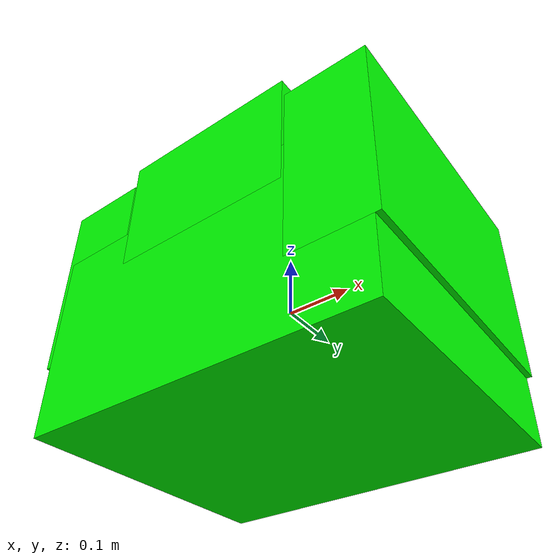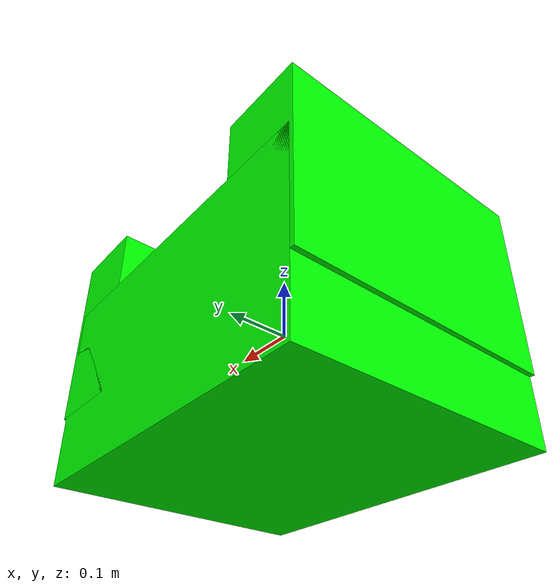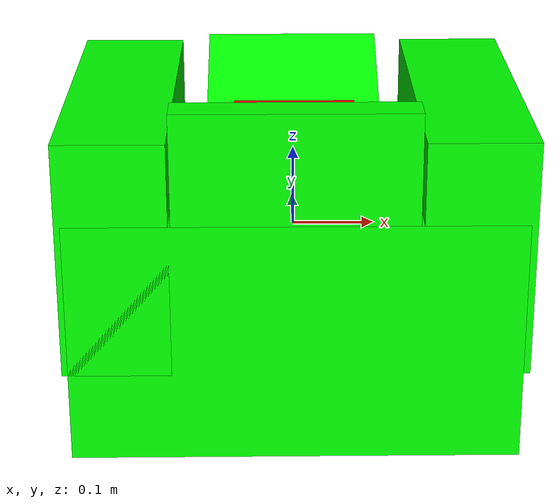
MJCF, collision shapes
<mujoco model="coffee_machine_22">
  <compiler autolimits="true" boundmass="0.01" angle="radian"/>
  <default>
    <default class="/">
      <default class="__VISUAL_MJT__">
        <geom contype="0" conaffinity="0" group="0"/>
      </default>
      <default class="__STRUCTURAL_MJT__">
        <geom contype="8" conaffinity="15" group="4" friction="0.90000000000000002 0.90000000000000002 0.001" solref="0.025000000000000001 1" solimp="0.998 0.998 0.001"/>
      </default>
      <default class="__DYNAMIC_MJT__">
        <geom contype="1" conaffinity="15" group="4" friction="0.90000000000000002 0.90000000000000002 0.001" solref="0.025000000000000001 1" solimp="0.998 0.998 0.001"/>
      </default>
    </default>
  </default>
  <asset>
    <material name="material_coffee_machine_backup_mat" class="/" specular="0.5" shininess="0.5" rgba="0.5 0.5 0.5 1"/>
    <material name="material_Coffee_Machine_Readout_Mat_Off" class="/" specular="0.5" shininess="0.5" rgba="0 0 0 1"/>
    <texture name="Coffee_Machine_Decal_Mat" type="2d" file="Coffee_Machine_Decal_AlbedoTransparency.png"/>
    <material name="material_Coffee_Machine_Decal_Mat" class="/" texture="Coffee_Machine_Decal_Mat" specular="0.5" shininess="0.5" rgba="1 1 1 1"/>
    <texture name="Coffee_Machine_Metal_Mat" type="2d" file="MetalBumpy_AlbedoTransparency.png"/>
    <material name="material_Coffee_Machine_Metal_Mat" class="/" texture="Coffee_Machine_Metal_Mat" specular="0.5" shininess="0.5" rgba="0.66176469999999998 0.66176469999999998 0.66176469999999998 1"/>
    <texture name="Coffee_Machine_Secondary2_Color_Mat" type="2d" file="BrushedIron_AlbedoTransparency.png"/>
    <material name="material_Coffee_Machine_Secondary2_Color_Mat" class="/" texture="Coffee_Machine_Secondary2_Color_Mat" specular="0.5" shininess="0.5" rgba="0.80882350000000003 0.80882350000000003 0.80882350000000003 1"/>
    <texture name="Coffee_Machine_Primary2_Color_Mat" type="2d" file="BumpyPlastic_Albedo.png"/>
    <material name="material_Coffee_Machine_Primary2_Color_Mat" class="/" texture="Coffee_Machine_Primary2_Color_Mat" specular="0.5" shininess="0.5" rgba="0.6323529 0.46849269999999998 0.29292820000000003 1"/>
    <mesh name="coffee_machine_22_coffee_machine_12_0" class="/" file="coffee_machine_22_coffee_machine_12/coffee_machine_22_coffee_machine_12_0.obj" scale="1 1 1"/>
    <mesh name="coffee_machine_22_coffee_machine_12_1" class="/" file="coffee_machine_22_coffee_machine_12/coffee_machine_22_coffee_machine_12_1.obj" scale="1 1 1"/>
    <mesh name="coffee_machine_22_coffee_machine_12_2" class="/" file="coffee_machine_22_coffee_machine_12/coffee_machine_22_coffee_machine_12_2.obj" scale="1 1 1"/>
    <mesh name="coffee_machine_22_coffee_machine_12_3" class="/" file="coffee_machine_22_coffee_machine_12/coffee_machine_22_coffee_machine_12_3.obj" scale="1 1 1"/>
    <mesh name="coffee_machine_22_coffee_machine_12_4" class="/" file="coffee_machine_22_coffee_machine_12/coffee_machine_22_coffee_machine_12_4.obj" scale="1 1 1"/>
    <mesh name="coffee_machine_22_coffee_machine_12_5" class="/" file="coffee_machine_22_coffee_machine_12/coffee_machine_22_coffee_machine_12_5.obj" scale="1 1 1"/>
  </asset>
  <worldbody>
    <body name="coffee_machine_22">
      <joint name="coffee_machine_22_free" class="/" type="free" pos="0 0 0" axis="0 0 1" stiffness="0" range="0 0" armature="0" damping="0.10000000000000001" frictionloss="0"/>
      <body name="coffee_machine_22_coffee_machine_12" pos="0.00050000000000000001 -0.21156 -0.016199999999999999" quat="1 0 0 0">
        <geom name="coffee_machine_22_coffee_machine_12_0" class="__VISUAL_MJT__" type="mesh" material="material_coffee_machine_backup_mat" shellinertia="true" mesh="coffee_machine_22_coffee_machine_12_0"/>
        <geom name="coffee_machine_22_coffee_machine_12_1" class="__VISUAL_MJT__" type="mesh" material="material_Coffee_Machine_Readout_Mat_Off" shellinertia="false" mesh="coffee_machine_22_coffee_machine_12_1"/>
        <geom name="coffee_machine_22_coffee_machine_12_2" class="__VISUAL_MJT__" type="mesh" material="material_Coffee_Machine_Decal_Mat" shellinertia="true" mesh="coffee_machine_22_coffee_machine_12_2"/>
        <geom name="coffee_machine_22_coffee_machine_12_3" class="__VISUAL_MJT__" type="mesh" material="material_Coffee_Machine_Metal_Mat" shellinertia="false" mesh="coffee_machine_22_coffee_machine_12_3"/>
        <geom name="coffee_machine_22_coffee_machine_12_4" class="__VISUAL_MJT__" type="mesh" material="material_Coffee_Machine_Secondary2_Color_Mat" shellinertia="false" mesh="coffee_machine_22_coffee_machine_12_4"/>
        <geom name="coffee_machine_22_coffee_machine_12_5" class="__VISUAL_MJT__" type="mesh" material="material_Coffee_Machine_Primary2_Color_Mat" shellinertia="false" mesh="coffee_machine_22_coffee_machine_12_5"/>
        <site name="coffee_machine_22_Receptacle_0" class="/" type="box" rgba="1 0 0 1" size="0.069470152258872986 0.044667184352874756 0.050965070724487305" pos="-0 0.088667184114456177 0.14929361641407013" quat="1 0 0 0"/>
        <geom name="coffee_machine_22_PrimitiveCollider_0" class="__DYNAMIC_MJT__" type="box" size="0.26253789663314819 0.21155509352684021 0.14537501335144043" rgba="0 1 0 1" pos="-0 0.21155509352684021 -0.049396753311157227" quat="1 0 0 0"/>
        <geom name="coffee_machine_22_PrimitiveCollider_1" class="__DYNAMIC_MJT__" type="box" size="0.063286781311035156 0.21155509352684021 0.14032936096191406" rgba="0 1 0 1" pos="-0.20600000023841858 0.21155509352684021 0.052557595074176788" quat="1 0 0 0"/>
        <geom name="coffee_machine_22_PrimitiveCollider_2" class="__DYNAMIC_MJT__" type="box" size="0.063286781311035156 0.21155509352684021 0.14032936096191406" rgba="0 1 0 1" pos="0.2070000022649765 0.21155509352684021 0.052557468414306641" quat="1 0 0 0"/>
        <geom name="coffee_machine_22_PrimitiveCollider_3" class="__DYNAMIC_MJT__" type="box" size="0.13986782729625702 0.021331161260604858 0.093908548355102539" rgba="0 1 0 1" pos="-0 0.021331161260604858 0.13325858116149902" quat="1 0 0 0"/>
        <geom name="coffee_machine_22_PrimitiveCollider_4" class="__DYNAMIC_MJT__" type="box" size="0.10400746762752533 0.070609450340270996 0.093908548355102539" rgba="0 1 0 1" pos="1.3164161316581158e-08 0.30377495288848877 0.11168760061264038" quat="0.97682303190231323 0.2140486091375351 2.237978837165089e-17 2.5516579071904744e-08"/>
      </body>
    </body>
  </worldbody>
</mujoco>
